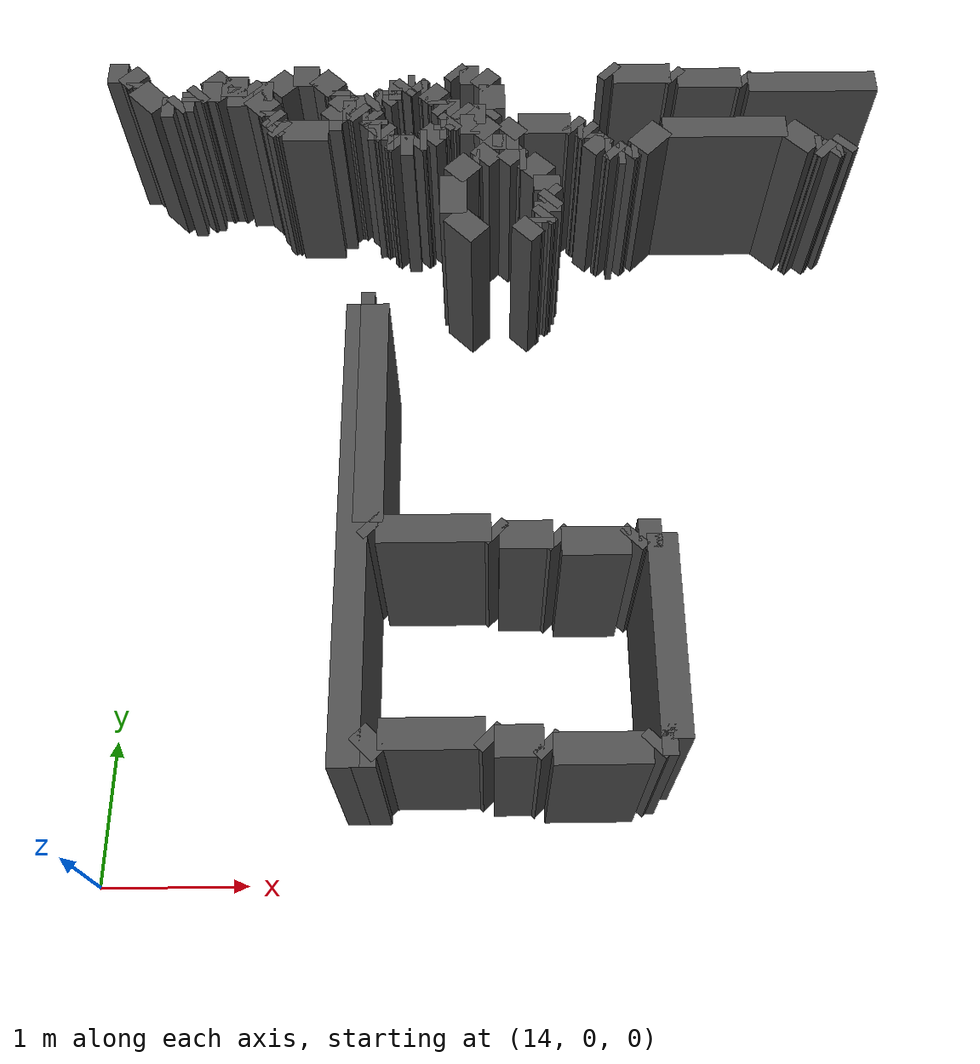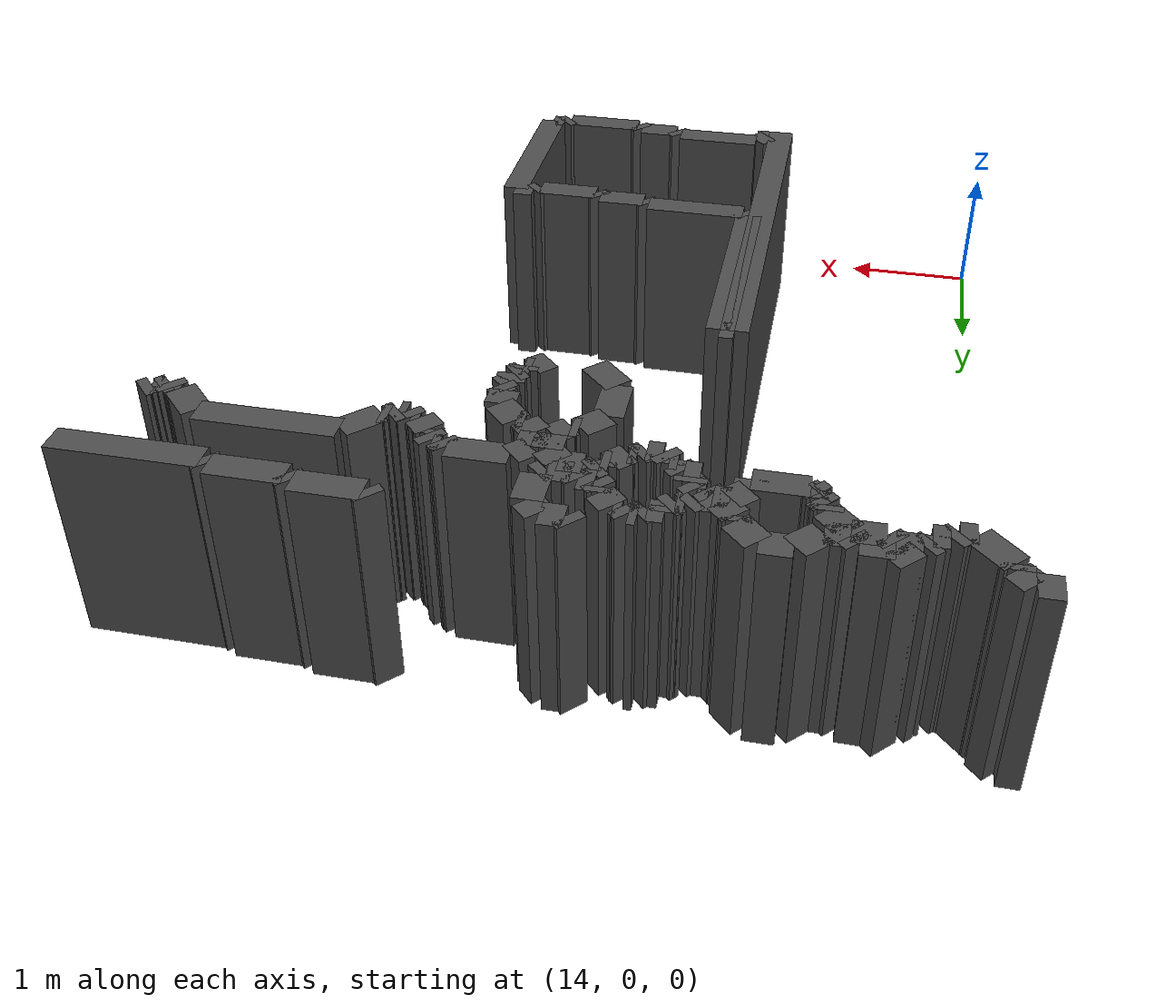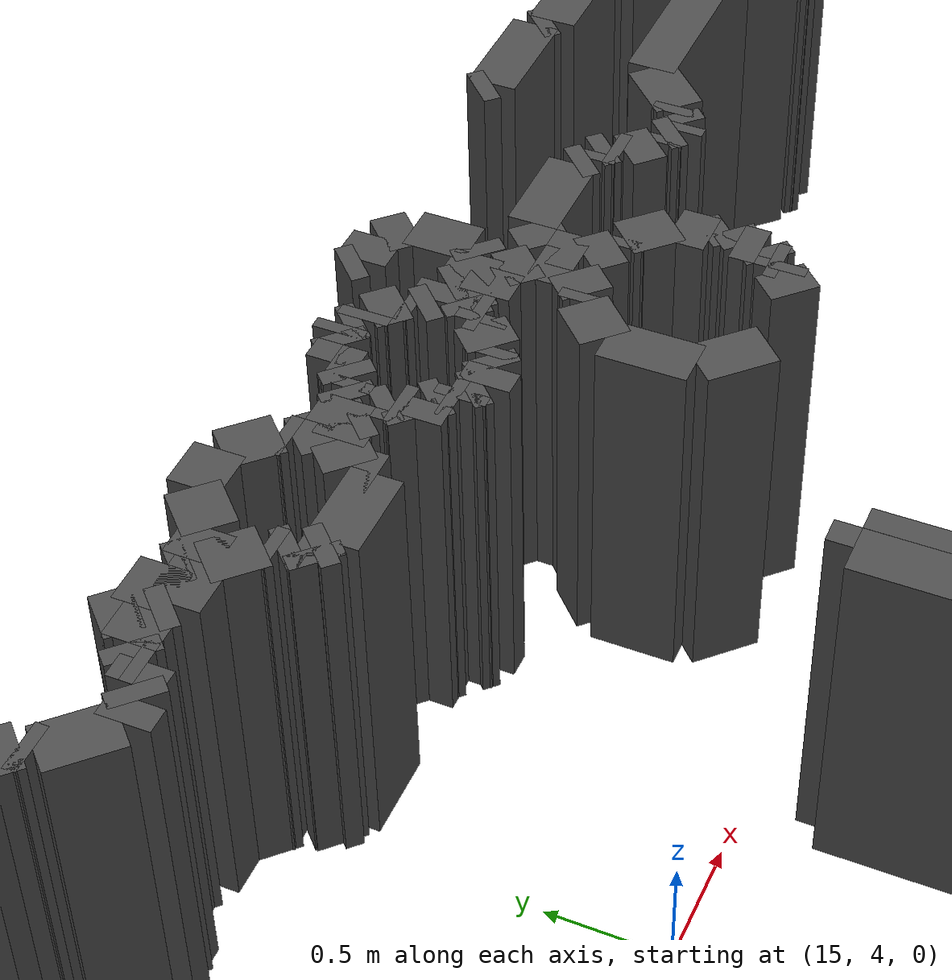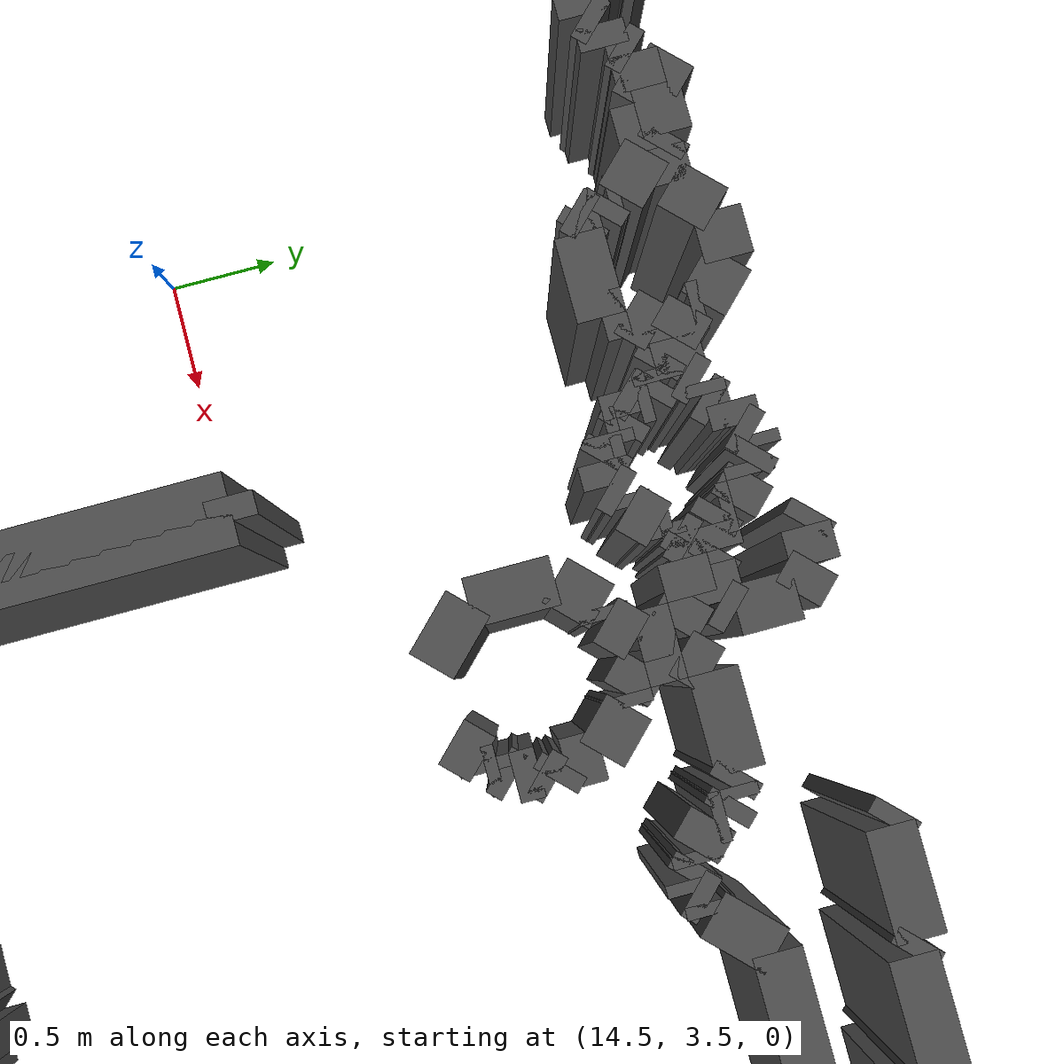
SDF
<sdf version="1.9">
 <model name="generated_walls">
  <static>true</static>
  <link name="wall_161_0">
   <pose>16.500 4.400 0.75 0 0 2.356</pose>
   <collision name="collision"><geometry><box><size>0.283 0.2 1.5</size></box></geometry></collision>
   <visual name="visual">
    <geometry><box><size>0.283 0.2 1.5</size></box></geometry>
    <material><ambient>0.3 0.3 0.3 1</ambient></material>
   </visual>
  </link>
  <link name="wall_161_1">
   <pose>16.400 4.675 0.75 0 0 1.571</pose>
   <collision name="collision"><geometry><box><size>0.350 0.2 1.5</size></box></geometry></collision>
   <visual name="visual">
    <geometry><box><size>0.350 0.2 1.5</size></box></geometry>
    <material><ambient>0.3 0.3 0.3 1</ambient></material>
   </visual>
  </link>
  <link name="wall_161_2">
   <pose>16.475 4.925 0.75 0 0 0.785</pose>
   <collision name="collision"><geometry><box><size>0.212 0.2 1.5</size></box></geometry></collision>
   <visual name="visual">
    <geometry><box><size>0.212 0.2 1.5</size></box></geometry>
    <material><ambient>0.3 0.3 0.3 1</ambient></material>
   </visual>
  </link>
  <link name="wall_161_3">
   <pose>16.575 5.000 0.75 0 0 0.000</pose>
   <collision name="collision"><geometry><box><size>0.050 0.2 1.5</size></box></geometry></collision>
   <visual name="visual">
    <geometry><box><size>0.050 0.2 1.5</size></box></geometry>
    <material><ambient>0.3 0.3 0.3 1</ambient></material>
   </visual>
  </link>
  <link name="wall_161_4">
   <pose>16.650 5.050 0.75 0 0 0.785</pose>
   <collision name="collision"><geometry><box><size>0.141 0.2 1.5</size></box></geometry></collision>
   <visual name="visual">
    <geometry><box><size>0.141 0.2 1.5</size></box></geometry>
    <material><ambient>0.3 0.3 0.3 1</ambient></material>
   </visual>
  </link>
  <link name="wall_161_5">
   <pose>16.700 5.175 0.75 0 0 1.571</pose>
   <collision name="collision"><geometry><box><size>0.150 0.2 1.5</size></box></geometry></collision>
   <visual name="visual">
    <geometry><box><size>0.150 0.2 1.5</size></box></geometry>
    <material><ambient>0.3 0.3 0.3 1</ambient></material>
   </visual>
  </link>
  <link name="wall_161_6">
   <pose>16.650 5.300 0.75 0 0 2.356</pose>
   <collision name="collision"><geometry><box><size>0.141 0.2 1.5</size></box></geometry></collision>
   <visual name="visual">
    <geometry><box><size>0.141 0.2 1.5</size></box></geometry>
    <material><ambient>0.3 0.3 0.3 1</ambient></material>
   </visual>
  </link>
  <link name="wall_161_7">
   <pose>16.525 5.350 0.75 0 0 3.142</pose>
   <collision name="collision"><geometry><box><size>0.150 0.2 1.5</size></box></geometry></collision>
   <visual name="visual">
    <geometry><box><size>0.150 0.2 1.5</size></box></geometry>
    <material><ambient>0.3 0.3 0.3 1</ambient></material>
   </visual>
  </link>
  <link name="wall_161_8">
   <pose>16.425 5.375 0.75 0 0 2.356</pose>
   <collision name="collision"><geometry><box><size>0.071 0.2 1.5</size></box></geometry></collision>
   <visual name="visual">
    <geometry><box><size>0.071 0.2 1.5</size></box></geometry>
    <material><ambient>0.3 0.3 0.3 1</ambient></material>
   </visual>
  </link>
  <link name="wall_161_9">
   <pose>16.375 5.375 0.75 0 0 -2.356</pose>
   <collision name="collision"><geometry><box><size>0.071 0.2 1.5</size></box></geometry></collision>
   <visual name="visual">
    <geometry><box><size>0.071 0.2 1.5</size></box></geometry>
    <material><ambient>0.3 0.3 0.3 1</ambient></material>
   </visual>
  </link>
  <link name="wall_161_10">
   <pose>16.350 5.325 0.75 0 0 -1.571</pose>
   <collision name="collision"><geometry><box><size>0.050 0.2 1.5</size></box></geometry></collision>
   <visual name="visual">
    <geometry><box><size>0.050 0.2 1.5</size></box></geometry>
    <material><ambient>0.3 0.3 0.3 1</ambient></material>
   </visual>
  </link>
  <link name="wall_161_11">
   <pose>16.325 5.300 0.75 0 0 3.142</pose>
   <collision name="collision"><geometry><box><size>0.050 0.2 1.5</size></box></geometry></collision>
   <visual name="visual">
    <geometry><box><size>0.050 0.2 1.5</size></box></geometry>
    <material><ambient>0.3 0.3 0.3 1</ambient></material>
   </visual>
  </link>
  <link name="wall_161_12">
   <pose>16.250 5.250 0.75 0 0 -2.356</pose>
   <collision name="collision"><geometry><box><size>0.141 0.2 1.5</size></box></geometry></collision>
   <visual name="visual">
    <geometry><box><size>0.141 0.2 1.5</size></box></geometry>
    <material><ambient>0.3 0.3 0.3 1</ambient></material>
   </visual>
  </link>
  <link name="wall_161_13">
   <pose>16.175 5.200 0.75 0 0 3.142</pose>
   <collision name="collision"><geometry><box><size>0.050 0.2 1.5</size></box></geometry></collision>
   <visual name="visual">
    <geometry><box><size>0.050 0.2 1.5</size></box></geometry>
    <material><ambient>0.3 0.3 0.3 1</ambient></material>
   </visual>
  </link>
  <link name="wall_161_14">
   <pose>16.125 5.175 0.75 0 0 -2.356</pose>
   <collision name="collision"><geometry><box><size>0.071 0.2 1.5</size></box></geometry></collision>
   <visual name="visual">
    <geometry><box><size>0.071 0.2 1.5</size></box></geometry>
    <material><ambient>0.3 0.3 0.3 1</ambient></material>
   </visual>
  </link>
  <link name="wall_161_15">
   <pose>16.050 5.150 0.75 0 0 3.142</pose>
   <collision name="collision"><geometry><box><size>0.100 0.2 1.5</size></box></geometry></collision>
   <visual name="visual">
    <geometry><box><size>0.100 0.2 1.5</size></box></geometry>
    <material><ambient>0.3 0.3 0.3 1</ambient></material>
   </visual>
  </link>
  <link name="wall_161_16">
   <pose>15.975 5.175 0.75 0 0 2.356</pose>
   <collision name="collision"><geometry><box><size>0.071 0.2 1.5</size></box></geometry></collision>
   <visual name="visual">
    <geometry><box><size>0.071 0.2 1.5</size></box></geometry>
    <material><ambient>0.3 0.3 0.3 1</ambient></material>
   </visual>
  </link>
  <link name="wall_161_17">
   <pose>15.925 5.200 0.75 0 0 3.142</pose>
   <collision name="collision"><geometry><box><size>0.050 0.2 1.5</size></box></geometry></collision>
   <visual name="visual">
    <geometry><box><size>0.050 0.2 1.5</size></box></geometry>
    <material><ambient>0.3 0.3 0.3 1</ambient></material>
   </visual>
  </link>
  <link name="wall_161_18">
   <pose>15.900 5.225 0.75 0 0 1.571</pose>
   <collision name="collision"><geometry><box><size>0.050 0.2 1.5</size></box></geometry></collision>
   <visual name="visual">
    <geometry><box><size>0.050 0.2 1.5</size></box></geometry>
    <material><ambient>0.3 0.3 0.3 1</ambient></material>
   </visual>
  </link>
  <link name="wall_161_19">
   <pose>15.875 5.275 0.75 0 0 2.356</pose>
   <collision name="collision"><geometry><box><size>0.071 0.2 1.5</size></box></geometry></collision>
   <visual name="visual">
    <geometry><box><size>0.071 0.2 1.5</size></box></geometry>
    <material><ambient>0.3 0.3 0.3 1</ambient></material>
   </visual>
  </link>
  <link name="wall_161_20">
   <pose>15.800 5.300 0.75 0 0 3.142</pose>
   <collision name="collision"><geometry><box><size>0.100 0.2 1.5</size></box></geometry></collision>
   <visual name="visual">
    <geometry><box><size>0.100 0.2 1.5</size></box></geometry>
    <material><ambient>0.3 0.3 0.3 1</ambient></material>
   </visual>
  </link>
  <link name="wall_161_21">
   <pose>15.775 5.325 0.75 0 0 0.785</pose>
   <collision name="collision"><geometry><box><size>0.071 0.2 1.5</size></box></geometry></collision>
   <visual name="visual">
    <geometry><box><size>0.071 0.2 1.5</size></box></geometry>
    <material><ambient>0.3 0.3 0.3 1</ambient></material>
   </visual>
  </link>
  <link name="wall_161_22">
   <pose>15.800 5.375 0.75 0 0 1.571</pose>
   <collision name="collision"><geometry><box><size>0.050 0.2 1.5</size></box></geometry></collision>
   <visual name="visual">
    <geometry><box><size>0.050 0.2 1.5</size></box></geometry>
    <material><ambient>0.3 0.3 0.3 1</ambient></material>
   </visual>
  </link>
  <link name="wall_161_23">
   <pose>15.775 5.425 0.75 0 0 2.356</pose>
   <collision name="collision"><geometry><box><size>0.071 0.2 1.5</size></box></geometry></collision>
   <visual name="visual">
    <geometry><box><size>0.071 0.2 1.5</size></box></geometry>
    <material><ambient>0.3 0.3 0.3 1</ambient></material>
   </visual>
  </link>
  <link name="wall_161_24">
   <pose>15.725 5.450 0.75 0 0 3.142</pose>
   <collision name="collision"><geometry><box><size>0.050 0.2 1.5</size></box></geometry></collision>
   <visual name="visual">
    <geometry><box><size>0.050 0.2 1.5</size></box></geometry>
    <material><ambient>0.3 0.3 0.3 1</ambient></material>
   </visual>
  </link>
  <link name="wall_161_25">
   <pose>15.675 5.475 0.75 0 0 2.356</pose>
   <collision name="collision"><geometry><box><size>0.071 0.2 1.5</size></box></geometry></collision>
   <visual name="visual">
    <geometry><box><size>0.071 0.2 1.5</size></box></geometry>
    <material><ambient>0.3 0.3 0.3 1</ambient></material>
   </visual>
  </link>
  <link name="wall_161_26">
   <pose>15.600 5.500 0.75 0 0 3.142</pose>
   <collision name="collision"><geometry><box><size>0.100 0.2 1.5</size></box></geometry></collision>
   <visual name="visual">
    <geometry><box><size>0.100 0.2 1.5</size></box></geometry>
    <material><ambient>0.3 0.3 0.3 1</ambient></material>
   </visual>
  </link>
  <link name="wall_161_27">
   <pose>15.500 5.450 0.75 0 0 -2.356</pose>
   <collision name="collision"><geometry><box><size>0.141 0.2 1.5</size></box></geometry></collision>
   <visual name="visual">
    <geometry><box><size>0.141 0.2 1.5</size></box></geometry>
    <material><ambient>0.3 0.3 0.3 1</ambient></material>
   </visual>
  </link>
  <link name="wall_161_28">
   <pose>15.450 5.350 0.75 0 0 -1.571</pose>
   <collision name="collision"><geometry><box><size>0.100 0.2 1.5</size></box></geometry></collision>
   <visual name="visual">
    <geometry><box><size>0.100 0.2 1.5</size></box></geometry>
    <material><ambient>0.3 0.3 0.3 1</ambient></material>
   </visual>
  </link>
  <link name="wall_161_29">
   <pose>15.275 5.300 0.75 0 0 3.142</pose>
   <collision name="collision"><geometry><box><size>0.350 0.2 1.5</size></box></geometry></collision>
   <visual name="visual">
    <geometry><box><size>0.350 0.2 1.5</size></box></geometry>
    <material><ambient>0.3 0.3 0.3 1</ambient></material>
   </visual>
  </link>
  <link name="wall_161_30">
   <pose>15.075 5.325 0.75 0 0 2.356</pose>
   <collision name="collision"><geometry><box><size>0.071 0.2 1.5</size></box></geometry></collision>
   <visual name="visual">
    <geometry><box><size>0.071 0.2 1.5</size></box></geometry>
    <material><ambient>0.3 0.3 0.3 1</ambient></material>
   </visual>
  </link>
  <link name="wall_161_31">
   <pose>15.025 5.325 0.75 0 0 -2.356</pose>
   <collision name="collision"><geometry><box><size>0.071 0.2 1.5</size></box></geometry></collision>
   <visual name="visual">
    <geometry><box><size>0.071 0.2 1.5</size></box></geometry>
    <material><ambient>0.3 0.3 0.3 1</ambient></material>
   </visual>
  </link>
  <link name="wall_161_32">
   <pose>15.025 5.325 0.75 0 0 0.785</pose>
   <collision name="collision"><geometry><box><size>0.071 0.2 1.5</size></box></geometry></collision>
   <visual name="visual">
    <geometry><box><size>0.071 0.2 1.5</size></box></geometry>
    <material><ambient>0.3 0.3 0.3 1</ambient></material>
   </visual>
  </link>
  <link name="wall_161_33">
   <pose>15.050 5.375 0.75 0 0 1.571</pose>
   <collision name="collision"><geometry><box><size>0.050 0.2 1.5</size></box></geometry></collision>
   <visual name="visual">
    <geometry><box><size>0.050 0.2 1.5</size></box></geometry>
    <material><ambient>0.3 0.3 0.3 1</ambient></material>
   </visual>
  </link>
  <link name="wall_161_34">
   <pose>15.025 5.425 0.75 0 0 2.356</pose>
   <collision name="collision"><geometry><box><size>0.071 0.2 1.5</size></box></geometry></collision>
   <visual name="visual">
    <geometry><box><size>0.071 0.2 1.5</size></box></geometry>
    <material><ambient>0.3 0.3 0.3 1</ambient></material>
   </visual>
  </link>
  <link name="wall_161_35">
   <pose>15.000 5.475 0.75 0 0 1.571</pose>
   <collision name="collision"><geometry><box><size>0.050 0.2 1.5</size></box></geometry></collision>
   <visual name="visual">
    <geometry><box><size>0.050 0.2 1.5</size></box></geometry>
    <material><ambient>0.3 0.3 0.3 1</ambient></material>
   </visual>
  </link>
  <link name="wall_161_36">
   <pose>14.925 5.575 0.75 0 0 2.356</pose>
   <collision name="collision"><geometry><box><size>0.212 0.2 1.5</size></box></geometry></collision>
   <visual name="visual">
    <geometry><box><size>0.212 0.2 1.5</size></box></geometry>
    <material><ambient>0.3 0.3 0.3 1</ambient></material>
   </visual>
  </link>
  <link name="wall_161_37">
   <pose>14.750 5.650 0.75 0 0 3.142</pose>
   <collision name="collision"><geometry><box><size>0.200 0.2 1.5</size></box></geometry></collision>
   <visual name="visual">
    <geometry><box><size>0.200 0.2 1.5</size></box></geometry>
    <material><ambient>0.3 0.3 0.3 1</ambient></material>
   </visual>
  </link>
  <link name="wall_161_38">
   <pose>14.625 5.675 0.75 0 0 2.356</pose>
   <collision name="collision"><geometry><box><size>0.071 0.2 1.5</size></box></geometry></collision>
   <visual name="visual">
    <geometry><box><size>0.071 0.2 1.5</size></box></geometry>
    <material><ambient>0.3 0.3 0.3 1</ambient></material>
   </visual>
  </link>
  <link name="wall_161_39">
   <pose>14.525 5.700 0.75 0 0 3.142</pose>
   <collision name="collision"><geometry><box><size>0.150 0.2 1.5</size></box></geometry></collision>
   <visual name="visual">
    <geometry><box><size>0.150 0.2 1.5</size></box></geometry>
    <material><ambient>0.3 0.3 0.3 1</ambient></material>
   </visual>
  </link>
  <link name="wall_161_40">
   <pose>14.425 5.675 0.75 0 0 -2.356</pose>
   <collision name="collision"><geometry><box><size>0.071 0.2 1.5</size></box></geometry></collision>
   <visual name="visual">
    <geometry><box><size>0.071 0.2 1.5</size></box></geometry>
    <material><ambient>0.3 0.3 0.3 1</ambient></material>
   </visual>
  </link>
  <link name="wall_161_41">
   <pose>14.400 5.625 0.75 0 0 -1.571</pose>
   <collision name="collision"><geometry><box><size>0.050 0.2 1.5</size></box></geometry></collision>
   <visual name="visual">
    <geometry><box><size>0.050 0.2 1.5</size></box></geometry>
    <material><ambient>0.3 0.3 0.3 1</ambient></material>
   </visual>
  </link>
  <link name="wall_161_42">
   <pose>14.350 5.600 0.75 0 0 3.142</pose>
   <collision name="collision"><geometry><box><size>0.100 0.2 1.5</size></box></geometry></collision>
   <visual name="visual">
    <geometry><box><size>0.100 0.2 1.5</size></box></geometry>
    <material><ambient>0.3 0.3 0.3 1</ambient></material>
   </visual>
  </link>
  <link name="wall_161_43">
   <pose>14.275 5.575 0.75 0 0 -2.356</pose>
   <collision name="collision"><geometry><box><size>0.071 0.2 1.5</size></box></geometry></collision>
   <visual name="visual">
    <geometry><box><size>0.071 0.2 1.5</size></box></geometry>
    <material><ambient>0.3 0.3 0.3 1</ambient></material>
   </visual>
  </link>
  <link name="wall_161_44">
   <pose>14.200 5.550 0.75 0 0 3.142</pose>
   <collision name="collision"><geometry><box><size>0.100 0.2 1.5</size></box></geometry></collision>
   <visual name="visual">
    <geometry><box><size>0.100 0.2 1.5</size></box></geometry>
    <material><ambient>0.3 0.3 0.3 1</ambient></material>
   </visual>
  </link>
  <link name="wall_161_45">
   <pose>14.050 5.650 0.75 0 0 2.356</pose>
   <collision name="collision"><geometry><box><size>0.283 0.2 1.5</size></box></geometry></collision>
   <visual name="visual">
    <geometry><box><size>0.283 0.2 1.5</size></box></geometry>
    <material><ambient>0.3 0.3 0.3 1</ambient></material>
   </visual>
  </link>
  <link name="wall_161_46">
   <pose>13.950 5.775 0.75 0 0 1.571</pose>
   <collision name="collision"><geometry><box><size>0.050 0.2 1.5</size></box></geometry></collision>
   <visual name="visual">
    <geometry><box><size>0.050 0.2 1.5</size></box></geometry>
    <material><ambient>0.3 0.3 0.3 1</ambient></material>
   </visual>
  </link>
  <link name="wall_161_47">
   <pose>13.900 5.850 0.75 0 0 2.356</pose>
   <collision name="collision"><geometry><box><size>0.141 0.2 1.5</size></box></geometry></collision>
   <visual name="visual">
    <geometry><box><size>0.141 0.2 1.5</size></box></geometry>
    <material><ambient>0.3 0.3 0.3 1</ambient></material>
   </visual>
  </link>
  <link name="wall_161_48">
   <pose>13.775 5.900 0.75 0 0 3.142</pose>
   <collision name="collision"><geometry><box><size>0.150 0.2 1.5</size></box></geometry></collision>
   <visual name="visual">
    <geometry><box><size>0.150 0.2 1.5</size></box></geometry>
    <material><ambient>0.3 0.3 0.3 1</ambient></material>
   </visual>
  </link>
  <link name="wall_161_1122">
   <pose>14.550 5.800 0.75 0 0 -0.785</pose>
   <collision name="collision"><geometry><box><size>0.141 0.2 1.5</size></box></geometry></collision>
   <visual name="visual">
    <geometry><box><size>0.141 0.2 1.5</size></box></geometry>
    <material><ambient>0.3 0.3 0.3 1</ambient></material>
   </visual>
  </link>
  <link name="wall_161_1123">
   <pose>14.700 5.750 0.75 0 0 0.000</pose>
   <collision name="collision"><geometry><box><size>0.200 0.2 1.5</size></box></geometry></collision>
   <visual name="visual">
    <geometry><box><size>0.200 0.2 1.5</size></box></geometry>
    <material><ambient>0.3 0.3 0.3 1</ambient></material>
   </visual>
  </link>
  <link name="wall_161_1124">
   <pose>14.825 5.725 0.75 0 0 -0.785</pose>
   <collision name="collision"><geometry><box><size>0.071 0.2 1.5</size></box></geometry></collision>
   <visual name="visual">
    <geometry><box><size>0.071 0.2 1.5</size></box></geometry>
    <material><ambient>0.3 0.3 0.3 1</ambient></material>
   </visual>
  </link>
  <link name="wall_161_1125">
   <pose>14.925 5.700 0.75 0 0 0.000</pose>
   <collision name="collision"><geometry><box><size>0.150 0.2 1.5</size></box></geometry></collision>
   <visual name="visual">
    <geometry><box><size>0.150 0.2 1.5</size></box></geometry>
    <material><ambient>0.3 0.3 0.3 1</ambient></material>
   </visual>
  </link>
  <link name="wall_161_1126">
   <pose>15.075 5.775 0.75 0 0 0.785</pose>
   <collision name="collision"><geometry><box><size>0.212 0.2 1.5</size></box></geometry></collision>
   <visual name="visual">
    <geometry><box><size>0.212 0.2 1.5</size></box></geometry>
    <material><ambient>0.3 0.3 0.3 1</ambient></material>
   </visual>
  </link>
  <link name="wall_161_1127">
   <pose>15.250 5.850 0.75 0 0 0.000</pose>
   <collision name="collision"><geometry><box><size>0.200 0.2 1.5</size></box></geometry></collision>
   <visual name="visual">
    <geometry><box><size>0.200 0.2 1.5</size></box></geometry>
    <material><ambient>0.3 0.3 0.3 1</ambient></material>
   </visual>
  </link>
  <link name="wall_161_1128">
   <pose>15.425 5.775 0.75 0 0 -0.785</pose>
   <collision name="collision"><geometry><box><size>0.212 0.2 1.5</size></box></geometry></collision>
   <visual name="visual">
    <geometry><box><size>0.212 0.2 1.5</size></box></geometry>
    <material><ambient>0.3 0.3 0.3 1</ambient></material>
   </visual>
  </link>
  <link name="wall_161_1129">
   <pose>15.500 5.675 0.75 0 0 -1.571</pose>
   <collision name="collision"><geometry><box><size>0.050 0.2 1.5</size></box></geometry></collision>
   <visual name="visual">
    <geometry><box><size>0.050 0.2 1.5</size></box></geometry>
    <material><ambient>0.3 0.3 0.3 1</ambient></material>
   </visual>
  </link>
  <link name="wall_161_1130">
   <pose>15.550 5.600 0.75 0 0 -0.785</pose>
   <collision name="collision"><geometry><box><size>0.141 0.2 1.5</size></box></geometry></collision>
   <visual name="visual">
    <geometry><box><size>0.141 0.2 1.5</size></box></geometry>
    <material><ambient>0.3 0.3 0.3 1</ambient></material>
   </visual>
  </link>
  <link name="wall_161_1131">
   <pose>15.675 5.550 0.75 0 0 0.000</pose>
   <collision name="collision"><geometry><box><size>0.150 0.2 1.5</size></box></geometry></collision>
   <visual name="visual">
    <geometry><box><size>0.150 0.2 1.5</size></box></geometry>
    <material><ambient>0.3 0.3 0.3 1</ambient></material>
   </visual>
  </link>
  <link name="wall_161_1132">
   <pose>15.775 5.575 0.75 0 0 0.785</pose>
   <collision name="collision"><geometry><box><size>0.071 0.2 1.5</size></box></geometry></collision>
   <visual name="visual">
    <geometry><box><size>0.071 0.2 1.5</size></box></geometry>
    <material><ambient>0.3 0.3 0.3 1</ambient></material>
   </visual>
  </link>
  <link name="wall_161_1133">
   <pose>15.825 5.600 0.75 0 0 0.000</pose>
   <collision name="collision"><geometry><box><size>0.050 0.2 1.5</size></box></geometry></collision>
   <visual name="visual">
    <geometry><box><size>0.050 0.2 1.5</size></box></geometry>
    <material><ambient>0.3 0.3 0.3 1</ambient></material>
   </visual>
  </link>
  <link name="wall_161_1134">
   <pose>15.875 5.625 0.75 0 0 0.785</pose>
   <collision name="collision"><geometry><box><size>0.071 0.2 1.5</size></box></geometry></collision>
   <visual name="visual">
    <geometry><box><size>0.071 0.2 1.5</size></box></geometry>
    <material><ambient>0.3 0.3 0.3 1</ambient></material>
   </visual>
  </link>
  <link name="wall_161_1135">
   <pose>15.900 5.675 0.75 0 0 1.571</pose>
   <collision name="collision"><geometry><box><size>0.050 0.2 1.5</size></box></geometry></collision>
   <visual name="visual">
    <geometry><box><size>0.050 0.2 1.5</size></box></geometry>
    <material><ambient>0.3 0.3 0.3 1</ambient></material>
   </visual>
  </link>
  <link name="wall_161_1136">
   <pose>15.950 5.700 0.75 0 0 0.000</pose>
   <collision name="collision"><geometry><box><size>0.100 0.2 1.5</size></box></geometry></collision>
   <visual name="visual">
    <geometry><box><size>0.100 0.2 1.5</size></box></geometry>
    <material><ambient>0.3 0.3 0.3 1</ambient></material>
   </visual>
  </link>
  <link name="wall_161_1137">
   <pose>16.025 5.725 0.75 0 0 0.785</pose>
   <collision name="collision"><geometry><box><size>0.071 0.2 1.5</size></box></geometry></collision>
   <visual name="visual">
    <geometry><box><size>0.071 0.2 1.5</size></box></geometry>
    <material><ambient>0.3 0.3 0.3 1</ambient></material>
   </visual>
  </link>
  <link name="wall_161_1138">
   <pose>16.075 5.750 0.75 0 0 0.000</pose>
   <collision name="collision"><geometry><box><size>0.050 0.2 1.5</size></box></geometry></collision>
   <visual name="visual">
    <geometry><box><size>0.050 0.2 1.5</size></box></geometry>
    <material><ambient>0.3 0.3 0.3 1</ambient></material>
   </visual>
  </link>
  <link name="wall_161_1139">
   <pose>16.125 5.725 0.75 0 0 -0.785</pose>
   <collision name="collision"><geometry><box><size>0.071 0.2 1.5</size></box></geometry></collision>
   <visual name="visual">
    <geometry><box><size>0.071 0.2 1.5</size></box></geometry>
    <material><ambient>0.3 0.3 0.3 1</ambient></material>
   </visual>
  </link>
  <link name="wall_161_1140">
   <pose>16.175 5.700 0.75 0 0 0.000</pose>
   <collision name="collision"><geometry><box><size>0.050 0.2 1.5</size></box></geometry></collision>
   <visual name="visual">
    <geometry><box><size>0.050 0.2 1.5</size></box></geometry>
    <material><ambient>0.3 0.3 0.3 1</ambient></material>
   </visual>
  </link>
  <link name="wall_161_1141">
   <pose>16.250 5.650 0.75 0 0 -0.785</pose>
   <collision name="collision"><geometry><box><size>0.141 0.2 1.5</size></box></geometry></collision>
   <visual name="visual">
    <geometry><box><size>0.141 0.2 1.5</size></box></geometry>
    <material><ambient>0.3 0.3 0.3 1</ambient></material>
   </visual>
  </link>
  <link name="wall_161_1142">
   <pose>16.300 5.575 0.75 0 0 -1.571</pose>
   <collision name="collision"><geometry><box><size>0.050 0.2 1.5</size></box></geometry></collision>
   <visual name="visual">
    <geometry><box><size>0.050 0.2 1.5</size></box></geometry>
    <material><ambient>0.3 0.3 0.3 1</ambient></material>
   </visual>
  </link>
  <link name="wall_161_1143">
   <pose>16.325 5.525 0.75 0 0 -0.785</pose>
   <collision name="collision"><geometry><box><size>0.071 0.2 1.5</size></box></geometry></collision>
   <visual name="visual">
    <geometry><box><size>0.071 0.2 1.5</size></box></geometry>
    <material><ambient>0.3 0.3 0.3 1</ambient></material>
   </visual>
  </link>
  <link name="wall_161_1144">
   <pose>16.400 5.500 0.75 0 0 0.000</pose>
   <collision name="collision"><geometry><box><size>0.100 0.2 1.5</size></box></geometry></collision>
   <visual name="visual">
    <geometry><box><size>0.100 0.2 1.5</size></box></geometry>
    <material><ambient>0.3 0.3 0.3 1</ambient></material>
   </visual>
  </link>
  <link name="wall_161_1145">
   <pose>16.475 5.475 0.75 0 0 -0.785</pose>
   <collision name="collision"><geometry><box><size>0.071 0.2 1.5</size></box></geometry></collision>
   <visual name="visual">
    <geometry><box><size>0.071 0.2 1.5</size></box></geometry>
    <material><ambient>0.3 0.3 0.3 1</ambient></material>
   </visual>
  </link>
  <link name="wall_161_1146">
   <pose>16.575 5.450 0.75 0 0 0.000</pose>
   <collision name="collision"><geometry><box><size>0.150 0.2 1.5</size></box></geometry></collision>
   <visual name="visual">
    <geometry><box><size>0.150 0.2 1.5</size></box></geometry>
    <material><ambient>0.3 0.3 0.3 1</ambient></material>
   </visual>
  </link>
  <link name="wall_161_1147">
   <pose>16.675 5.475 0.75 0 0 0.785</pose>
   <collision name="collision"><geometry><box><size>0.071 0.2 1.5</size></box></geometry></collision>
   <visual name="visual">
    <geometry><box><size>0.071 0.2 1.5</size></box></geometry>
    <material><ambient>0.3 0.3 0.3 1</ambient></material>
   </visual>
  </link>
  <link name="wall_161_1148">
   <pose>16.700 5.625 0.75 0 0 1.571</pose>
   <collision name="collision"><geometry><box><size>0.250 0.2 1.5</size></box></geometry></collision>
   <visual name="visual">
    <geometry><box><size>0.250 0.2 1.5</size></box></geometry>
    <material><ambient>0.3 0.3 0.3 1</ambient></material>
   </visual>
  </link>
  <link name="wall_161_1149">
   <pose>16.650 5.800 0.75 0 0 2.356</pose>
   <collision name="collision"><geometry><box><size>0.141 0.2 1.5</size></box></geometry></collision>
   <visual name="visual">
    <geometry><box><size>0.141 0.2 1.5</size></box></geometry>
    <material><ambient>0.3 0.3 0.3 1</ambient></material>
   </visual>
  </link>
  <link name="wall_161_1150">
   <pose>16.525 5.850 0.75 0 0 3.142</pose>
   <collision name="collision"><geometry><box><size>0.150 0.2 1.5</size></box></geometry></collision>
   <visual name="visual">
    <geometry><box><size>0.150 0.2 1.5</size></box></geometry>
    <material><ambient>0.3 0.3 0.3 1</ambient></material>
   </visual>
  </link>
  <link name="wall_161_1151">
   <pose>16.425 5.875 0.75 0 0 2.356</pose>
   <collision name="collision"><geometry><box><size>0.071 0.2 1.5</size></box></geometry></collision>
   <visual name="visual">
    <geometry><box><size>0.071 0.2 1.5</size></box></geometry>
    <material><ambient>0.3 0.3 0.3 1</ambient></material>
   </visual>
  </link>
  <link name="wall_161_1268">
   <pose>17.625 5.875 0.75 0 0 -0.785</pose>
   <collision name="collision"><geometry><box><size>0.071 0.2 1.5</size></box></geometry></collision>
   <visual name="visual">
    <geometry><box><size>0.071 0.2 1.5</size></box></geometry>
    <material><ambient>0.3 0.3 0.3 1</ambient></material>
   </visual>
  </link>
  <link name="wall_161_1269">
   <pose>17.875 5.850 0.75 0 0 0.000</pose>
   <collision name="collision"><geometry><box><size>0.450 0.2 1.5</size></box></geometry></collision>
   <visual name="visual">
    <geometry><box><size>0.450 0.2 1.5</size></box></geometry>
    <material><ambient>0.3 0.3 0.3 1</ambient></material>
   </visual>
  </link>
  <link name="wall_161_1270">
   <pose>18.125 5.825 0.75 0 0 -0.785</pose>
   <collision name="collision"><geometry><box><size>0.071 0.2 1.5</size></box></geometry></collision>
   <visual name="visual">
    <geometry><box><size>0.071 0.2 1.5</size></box></geometry>
    <material><ambient>0.3 0.3 0.3 1</ambient></material>
   </visual>
  </link>
  <link name="wall_161_1271">
   <pose>18.400 5.800 0.75 0 0 0.000</pose>
   <collision name="collision"><geometry><box><size>0.500 0.2 1.5</size></box></geometry></collision>
   <visual name="visual">
    <geometry><box><size>0.500 0.2 1.5</size></box></geometry>
    <material><ambient>0.3 0.3 0.3 1</ambient></material>
   </visual>
  </link>
  <link name="wall_161_1272">
   <pose>18.675 5.775 0.75 0 0 -0.785</pose>
   <collision name="collision"><geometry><box><size>0.071 0.2 1.5</size></box></geometry></collision>
   <visual name="visual">
    <geometry><box><size>0.071 0.2 1.5</size></box></geometry>
    <material><ambient>0.3 0.3 0.3 1</ambient></material>
   </visual>
  </link>
  <link name="wall_161_1273">
   <pose>19.200 5.750 0.75 0 0 0.000</pose>
   <collision name="collision"><geometry><box><size>1.000 0.2 1.5</size></box></geometry></collision>
   <visual name="visual">
    <geometry><box><size>1.000 0.2 1.5</size></box></geometry>
    <material><ambient>0.3 0.3 0.3 1</ambient></material>
   </visual>
  </link>
  <link name="wall_161_2906">
   <pose>19.375 5.125 0.75 0 0 -2.356</pose>
   <collision name="collision"><geometry><box><size>0.071 0.2 1.5</size></box></geometry></collision>
   <visual name="visual">
    <geometry><box><size>0.071 0.2 1.5</size></box></geometry>
    <material><ambient>0.3 0.3 0.3 1</ambient></material>
   </visual>
  </link>
  <link name="wall_161_2907">
   <pose>19.325 5.100 0.75 0 0 3.142</pose>
   <collision name="collision"><geometry><box><size>0.050 0.2 1.5</size></box></geometry></collision>
   <visual name="visual">
    <geometry><box><size>0.050 0.2 1.5</size></box></geometry>
    <material><ambient>0.3 0.3 0.3 1</ambient></material>
   </visual>
  </link>
  <link name="wall_161_2908">
   <pose>19.275 5.075 0.75 0 0 -2.356</pose>
   <collision name="collision"><geometry><box><size>0.071 0.2 1.5</size></box></geometry></collision>
   <visual name="visual">
    <geometry><box><size>0.071 0.2 1.5</size></box></geometry>
    <material><ambient>0.3 0.3 0.3 1</ambient></material>
   </visual>
  </link>
  <link name="wall_161_2909">
   <pose>19.225 5.075 0.75 0 0 2.356</pose>
   <collision name="collision"><geometry><box><size>0.071 0.2 1.5</size></box></geometry></collision>
   <visual name="visual">
    <geometry><box><size>0.071 0.2 1.5</size></box></geometry>
    <material><ambient>0.3 0.3 0.3 1</ambient></material>
   </visual>
  </link>
  <link name="wall_161_2910">
   <pose>19.175 5.100 0.75 0 0 3.142</pose>
   <collision name="collision"><geometry><box><size>0.050 0.2 1.5</size></box></geometry></collision>
   <visual name="visual">
    <geometry><box><size>0.050 0.2 1.5</size></box></geometry>
    <material><ambient>0.3 0.3 0.3 1</ambient></material>
   </visual>
  </link>
  <link name="wall_161_2911">
   <pose>19.050 5.200 0.75 0 0 2.356</pose>
   <collision name="collision"><geometry><box><size>0.283 0.2 1.5</size></box></geometry></collision>
   <visual name="visual">
    <geometry><box><size>0.283 0.2 1.5</size></box></geometry>
    <material><ambient>0.3 0.3 0.3 1</ambient></material>
   </visual>
  </link>
  <link name="wall_161_2912">
   <pose>18.475 5.300 0.75 0 0 3.142</pose>
   <collision name="collision"><geometry><box><size>0.950 0.2 1.5</size></box></geometry></collision>
   <visual name="visual">
    <geometry><box><size>0.950 0.2 1.5</size></box></geometry>
    <material><ambient>0.3 0.3 0.3 1</ambient></material>
   </visual>
  </link>
  <link name="wall_161_2913">
   <pose>17.900 5.200 0.75 0 0 -2.356</pose>
   <collision name="collision"><geometry><box><size>0.283 0.2 1.5</size></box></geometry></collision>
   <visual name="visual">
    <geometry><box><size>0.283 0.2 1.5</size></box></geometry>
    <material><ambient>0.3 0.3 0.3 1</ambient></material>
   </visual>
  </link>
  <link name="wall_161_2914">
   <pose>17.775 5.100 0.75 0 0 3.142</pose>
   <collision name="collision"><geometry><box><size>0.050 0.2 1.5</size></box></geometry></collision>
   <visual name="visual">
    <geometry><box><size>0.050 0.2 1.5</size></box></geometry>
    <material><ambient>0.3 0.3 0.3 1</ambient></material>
   </visual>
  </link>
  <link name="wall_161_2915">
   <pose>17.725 5.075 0.75 0 0 -2.356</pose>
   <collision name="collision"><geometry><box><size>0.071 0.2 1.5</size></box></geometry></collision>
   <visual name="visual">
    <geometry><box><size>0.071 0.2 1.5</size></box></geometry>
    <material><ambient>0.3 0.3 0.3 1</ambient></material>
   </visual>
  </link>
  <link name="wall_161_2916">
   <pose>17.675 5.050 0.75 0 0 3.142</pose>
   <collision name="collision"><geometry><box><size>0.050 0.2 1.5</size></box></geometry></collision>
   <visual name="visual">
    <geometry><box><size>0.050 0.2 1.5</size></box></geometry>
    <material><ambient>0.3 0.3 0.3 1</ambient></material>
   </visual>
  </link>
  <link name="wall_161_2917">
   <pose>17.625 5.075 0.75 0 0 2.356</pose>
   <collision name="collision"><geometry><box><size>0.071 0.2 1.5</size></box></geometry></collision>
   <visual name="visual">
    <geometry><box><size>0.071 0.2 1.5</size></box></geometry>
    <material><ambient>0.3 0.3 0.3 1</ambient></material>
   </visual>
  </link>
  <link name="wall_161_2918">
   <pose>17.575 5.100 0.75 0 0 3.142</pose>
   <collision name="collision"><geometry><box><size>0.050 0.2 1.5</size></box></geometry></collision>
   <visual name="visual">
    <geometry><box><size>0.050 0.2 1.5</size></box></geometry>
    <material><ambient>0.3 0.3 0.3 1</ambient></material>
   </visual>
  </link>
  <link name="wall_161_2919">
   <pose>17.500 5.150 0.75 0 0 2.356</pose>
   <collision name="collision"><geometry><box><size>0.141 0.2 1.5</size></box></geometry></collision>
   <visual name="visual">
    <geometry><box><size>0.141 0.2 1.5</size></box></geometry>
    <material><ambient>0.3 0.3 0.3 1</ambient></material>
   </visual>
  </link>
  <link name="wall_161_2920">
   <pose>17.450 5.225 0.75 0 0 1.571</pose>
   <collision name="collision"><geometry><box><size>0.050 0.2 1.5</size></box></geometry></collision>
   <visual name="visual">
    <geometry><box><size>0.050 0.2 1.5</size></box></geometry>
    <material><ambient>0.3 0.3 0.3 1</ambient></material>
   </visual>
  </link>
  <link name="wall_161_2921">
   <pose>17.425 5.275 0.75 0 0 2.356</pose>
   <collision name="collision"><geometry><box><size>0.071 0.2 1.5</size></box></geometry></collision>
   <visual name="visual">
    <geometry><box><size>0.071 0.2 1.5</size></box></geometry>
    <material><ambient>0.3 0.3 0.3 1</ambient></material>
   </visual>
  </link>
  <link name="wall_161_2922">
   <pose>17.375 5.300 0.75 0 0 3.142</pose>
   <collision name="collision"><geometry><box><size>0.050 0.2 1.5</size></box></geometry></collision>
   <visual name="visual">
    <geometry><box><size>0.050 0.2 1.5</size></box></geometry>
    <material><ambient>0.3 0.3 0.3 1</ambient></material>
   </visual>
  </link>
  <link name="wall_161_2923">
   <pose>17.325 5.325 0.75 0 0 2.356</pose>
   <collision name="collision"><geometry><box><size>0.071 0.2 1.5</size></box></geometry></collision>
   <visual name="visual">
    <geometry><box><size>0.071 0.2 1.5</size></box></geometry>
    <material><ambient>0.3 0.3 0.3 1</ambient></material>
   </visual>
  </link>
  <link name="wall_161_2924">
   <pose>17.100 5.350 0.75 0 0 3.142</pose>
   <collision name="collision"><geometry><box><size>0.400 0.2 1.5</size></box></geometry></collision>
   <visual name="visual">
    <geometry><box><size>0.400 0.2 1.5</size></box></geometry>
    <material><ambient>0.3 0.3 0.3 1</ambient></material>
   </visual>
  </link>
  <link name="wall_161_2925">
   <pose>16.850 5.300 0.75 0 0 -2.356</pose>
   <collision name="collision"><geometry><box><size>0.141 0.2 1.5</size></box></geometry></collision>
   <visual name="visual">
    <geometry><box><size>0.141 0.2 1.5</size></box></geometry>
    <material><ambient>0.3 0.3 0.3 1</ambient></material>
   </visual>
  </link>
  <link name="wall_161_2926">
   <pose>16.800 5.175 0.75 0 0 -1.571</pose>
   <collision name="collision"><geometry><box><size>0.150 0.2 1.5</size></box></geometry></collision>
   <visual name="visual">
    <geometry><box><size>0.150 0.2 1.5</size></box></geometry>
    <material><ambient>0.3 0.3 0.3 1</ambient></material>
   </visual>
  </link>
  <link name="wall_161_2927">
   <pose>16.850 5.050 0.75 0 0 -0.785</pose>
   <collision name="collision"><geometry><box><size>0.141 0.2 1.5</size></box></geometry></collision>
   <visual name="visual">
    <geometry><box><size>0.141 0.2 1.5</size></box></geometry>
    <material><ambient>0.3 0.3 0.3 1</ambient></material>
   </visual>
  </link>
  <link name="wall_161_2928">
   <pose>16.925 5.000 0.75 0 0 0.000</pose>
   <collision name="collision"><geometry><box><size>0.050 0.2 1.5</size></box></geometry></collision>
   <visual name="visual">
    <geometry><box><size>0.050 0.2 1.5</size></box></geometry>
    <material><ambient>0.3 0.3 0.3 1</ambient></material>
   </visual>
  </link>
  <link name="wall_161_2929">
   <pose>17.025 4.925 0.75 0 0 -0.785</pose>
   <collision name="collision"><geometry><box><size>0.212 0.2 1.5</size></box></geometry></collision>
   <visual name="visual">
    <geometry><box><size>0.212 0.2 1.5</size></box></geometry>
    <material><ambient>0.3 0.3 0.3 1</ambient></material>
   </visual>
  </link>
  <link name="wall_161_2930">
   <pose>17.100 4.775 0.75 0 0 -1.571</pose>
   <collision name="collision"><geometry><box><size>0.150 0.2 1.5</size></box></geometry></collision>
   <visual name="visual">
    <geometry><box><size>0.150 0.2 1.5</size></box></geometry>
    <material><ambient>0.3 0.3 0.3 1</ambient></material>
   </visual>
  </link>
  <link name="wall_161_2931">
   <pose>17.125 4.675 0.75 0 0 -0.785</pose>
   <collision name="collision"><geometry><box><size>0.071 0.2 1.5</size></box></geometry></collision>
   <visual name="visual">
    <geometry><box><size>0.071 0.2 1.5</size></box></geometry>
    <material><ambient>0.3 0.3 0.3 1</ambient></material>
   </visual>
  </link>
  <link name="wall_161_2932">
   <pose>17.125 4.625 0.75 0 0 -2.356</pose>
   <collision name="collision"><geometry><box><size>0.071 0.2 1.5</size></box></geometry></collision>
   <visual name="visual">
    <geometry><box><size>0.071 0.2 1.5</size></box></geometry>
    <material><ambient>0.3 0.3 0.3 1</ambient></material>
   </visual>
  </link>
  <link name="wall_161_2933">
   <pose>17.100 4.550 0.75 0 0 -1.571</pose>
   <collision name="collision"><geometry><box><size>0.100 0.2 1.5</size></box></geometry></collision>
   <visual name="visual">
    <geometry><box><size>0.100 0.2 1.5</size></box></geometry>
    <material><ambient>0.3 0.3 0.3 1</ambient></material>
   </visual>
  </link>
  <link name="wall_161_2934">
   <pose>17.075 4.475 0.75 0 0 -2.356</pose>
   <collision name="collision"><geometry><box><size>0.071 0.2 1.5</size></box></geometry></collision>
   <visual name="visual">
    <geometry><box><size>0.071 0.2 1.5</size></box></geometry>
    <material><ambient>0.3 0.3 0.3 1</ambient></material>
   </visual>
  </link>
  <link name="wall_161_2935">
   <pose>17.050 4.425 0.75 0 0 -1.571</pose>
   <collision name="collision"><geometry><box><size>0.050 0.2 1.5</size></box></geometry></collision>
   <visual name="visual">
    <geometry><box><size>0.050 0.2 1.5</size></box></geometry>
    <material><ambient>0.3 0.3 0.3 1</ambient></material>
   </visual>
  </link>
  <link name="wall_161_2936">
   <pose>17.025 4.400 0.75 0 0 3.142</pose>
   <collision name="collision"><geometry><box><size>0.050 0.2 1.5</size></box></geometry></collision>
   <visual name="visual">
    <geometry><box><size>0.050 0.2 1.5</size></box></geometry>
    <material><ambient>0.3 0.3 0.3 1</ambient></material>
   </visual>
  </link>
  <link name="wall_161_2937">
   <pose>16.950 4.350 0.75 0 0 -2.356</pose>
   <collision name="collision"><geometry><box><size>0.141 0.2 1.5</size></box></geometry></collision>
   <visual name="visual">
    <geometry><box><size>0.141 0.2 1.5</size></box></geometry>
    <material><ambient>0.3 0.3 0.3 1</ambient></material>
   </visual>
  </link>
  <link name="wall_163_0">
   <pose>15.750 2.050 0.75 0 0 1.571</pose>
   <collision name="collision"><geometry><box><size>3.300 0.2 1.5</size></box></geometry></collision>
   <visual name="visual">
    <geometry><box><size>3.300 0.2 1.5</size></box></geometry>
    <material><ambient>0.3 0.3 0.3 1</ambient></material>
   </visual>
  </link>
  <link name="wall_163_1">
   <pose>15.800 3.700 0.75 0 0 0.000</pose>
   <collision name="collision"><geometry><box><size>0.100 0.2 1.5</size></box></geometry></collision>
   <visual name="visual">
    <geometry><box><size>0.100 0.2 1.5</size></box></geometry>
    <material><ambient>0.3 0.3 0.3 1</ambient></material>
   </visual>
  </link>
  <link name="wall_163_2">
   <pose>15.850 2.850 0.75 0 0 -1.571</pose>
   <collision name="collision"><geometry><box><size>1.700 0.2 1.5</size></box></geometry></collision>
   <visual name="visual">
    <geometry><box><size>1.700 0.2 1.5</size></box></geometry>
    <material><ambient>0.3 0.3 0.3 1</ambient></material>
   </visual>
  </link>
  <link name="wall_163_3">
   <pose>15.875 1.975 0.75 0 0 -0.785</pose>
   <collision name="collision"><geometry><box><size>0.071 0.2 1.5</size></box></geometry></collision>
   <visual name="visual">
    <geometry><box><size>0.071 0.2 1.5</size></box></geometry>
    <material><ambient>0.3 0.3 0.3 1</ambient></material>
   </visual>
  </link>
  <link name="wall_163_4">
   <pose>16.275 1.950 0.75 0 0 0.000</pose>
   <collision name="collision"><geometry><box><size>0.750 0.2 1.5</size></box></geometry></collision>
   <visual name="visual">
    <geometry><box><size>0.750 0.2 1.5</size></box></geometry>
    <material><ambient>0.3 0.3 0.3 1</ambient></material>
   </visual>
  </link>
  <link name="wall_163_5">
   <pose>16.675 1.925 0.75 0 0 -0.785</pose>
   <collision name="collision"><geometry><box><size>0.071 0.2 1.5</size></box></geometry></collision>
   <visual name="visual">
    <geometry><box><size>0.071 0.2 1.5</size></box></geometry>
    <material><ambient>0.3 0.3 0.3 1</ambient></material>
   </visual>
  </link>
  <link name="wall_163_6">
   <pose>16.875 1.900 0.75 0 0 0.000</pose>
   <collision name="collision"><geometry><box><size>0.350 0.2 1.5</size></box></geometry></collision>
   <visual name="visual">
    <geometry><box><size>0.350 0.2 1.5</size></box></geometry>
    <material><ambient>0.3 0.3 0.3 1</ambient></material>
   </visual>
  </link>
  <link name="wall_163_7">
   <pose>17.075 1.875 0.75 0 0 -0.785</pose>
   <collision name="collision"><geometry><box><size>0.071 0.2 1.5</size></box></geometry></collision>
   <visual name="visual">
    <geometry><box><size>0.071 0.2 1.5</size></box></geometry>
    <material><ambient>0.3 0.3 0.3 1</ambient></material>
   </visual>
  </link>
  <link name="wall_163_8">
   <pose>17.325 1.850 0.75 0 0 0.000</pose>
   <collision name="collision"><geometry><box><size>0.450 0.2 1.5</size></box></geometry></collision>
   <visual name="visual">
    <geometry><box><size>0.450 0.2 1.5</size></box></geometry>
    <material><ambient>0.3 0.3 0.3 1</ambient></material>
   </visual>
  </link>
  <link name="wall_163_9">
   <pose>17.575 1.875 0.75 0 0 0.785</pose>
   <collision name="collision"><geometry><box><size>0.071 0.2 1.5</size></box></geometry></collision>
   <visual name="visual">
    <geometry><box><size>0.071 0.2 1.5</size></box></geometry>
    <material><ambient>0.3 0.3 0.3 1</ambient></material>
   </visual>
  </link>
  <link name="wall_163_10">
   <pose>17.675 1.900 0.75 0 0 0.000</pose>
   <collision name="collision"><geometry><box><size>0.150 0.2 1.5</size></box></geometry></collision>
   <visual name="visual">
    <geometry><box><size>0.150 0.2 1.5</size></box></geometry>
    <material><ambient>0.3 0.3 0.3 1</ambient></material>
   </visual>
  </link>
  <link name="wall_163_11">
   <pose>17.750 1.225 0.75 0 0 -1.571</pose>
   <collision name="collision"><geometry><box><size>1.350 0.2 1.5</size></box></geometry></collision>
   <visual name="visual">
    <geometry><box><size>1.350 0.2 1.5</size></box></geometry>
    <material><ambient>0.3 0.3 0.3 1</ambient></material>
   </visual>
  </link>
  <link name="wall_163_12">
   <pose>17.700 0.550 0.75 0 0 3.142</pose>
   <collision name="collision"><geometry><box><size>0.100 0.2 1.5</size></box></geometry></collision>
   <visual name="visual">
    <geometry><box><size>0.100 0.2 1.5</size></box></geometry>
    <material><ambient>0.3 0.3 0.3 1</ambient></material>
   </visual>
  </link>
  <link name="wall_163_13">
   <pose>17.625 0.525 0.75 0 0 -2.356</pose>
   <collision name="collision"><geometry><box><size>0.071 0.2 1.5</size></box></geometry></collision>
   <visual name="visual">
    <geometry><box><size>0.071 0.2 1.5</size></box></geometry>
    <material><ambient>0.3 0.3 0.3 1</ambient></material>
   </visual>
  </link>
  <link name="wall_163_14">
   <pose>17.300 0.500 0.75 0 0 3.142</pose>
   <collision name="collision"><geometry><box><size>0.600 0.2 1.5</size></box></geometry></collision>
   <visual name="visual">
    <geometry><box><size>0.600 0.2 1.5</size></box></geometry>
    <material><ambient>0.3 0.3 0.3 1</ambient></material>
   </visual>
  </link>
  <link name="wall_163_15">
   <pose>16.975 0.525 0.75 0 0 2.356</pose>
   <collision name="collision"><geometry><box><size>0.071 0.2 1.5</size></box></geometry></collision>
   <visual name="visual">
    <geometry><box><size>0.071 0.2 1.5</size></box></geometry>
    <material><ambient>0.3 0.3 0.3 1</ambient></material>
   </visual>
  </link>
  <link name="wall_163_16">
   <pose>16.800 0.550 0.75 0 0 3.142</pose>
   <collision name="collision"><geometry><box><size>0.300 0.2 1.5</size></box></geometry></collision>
   <visual name="visual">
    <geometry><box><size>0.300 0.2 1.5</size></box></geometry>
    <material><ambient>0.3 0.3 0.3 1</ambient></material>
   </visual>
  </link>
  <link name="wall_163_17">
   <pose>16.625 0.575 0.75 0 0 2.356</pose>
   <collision name="collision"><geometry><box><size>0.071 0.2 1.5</size></box></geometry></collision>
   <visual name="visual">
    <geometry><box><size>0.071 0.2 1.5</size></box></geometry>
    <material><ambient>0.3 0.3 0.3 1</ambient></material>
   </visual>
  </link>
  <link name="wall_163_18">
   <pose>16.275 0.600 0.75 0 0 3.142</pose>
   <collision name="collision"><geometry><box><size>0.650 0.2 1.5</size></box></geometry></collision>
   <visual name="visual">
    <geometry><box><size>0.650 0.2 1.5</size></box></geometry>
    <material><ambient>0.3 0.3 0.3 1</ambient></material>
   </visual>
  </link>
  <link name="wall_163_19">
   <pose>15.900 0.550 0.75 0 0 -2.356</pose>
   <collision name="collision"><geometry><box><size>0.141 0.2 1.5</size></box></geometry></collision>
   <visual name="visual">
    <geometry><box><size>0.141 0.2 1.5</size></box></geometry>
    <material><ambient>0.3 0.3 0.3 1</ambient></material>
   </visual>
  </link>
  <link name="wall_163_20">
   <pose>15.850 0.450 0.75 0 0 -1.571</pose>
   <collision name="collision"><geometry><box><size>0.100 0.2 1.5</size></box></geometry></collision>
   <visual name="visual">
    <geometry><box><size>0.100 0.2 1.5</size></box></geometry>
    <material><ambient>0.3 0.3 0.3 1</ambient></material>
   </visual>
  </link>
 </model>
</sdf>
